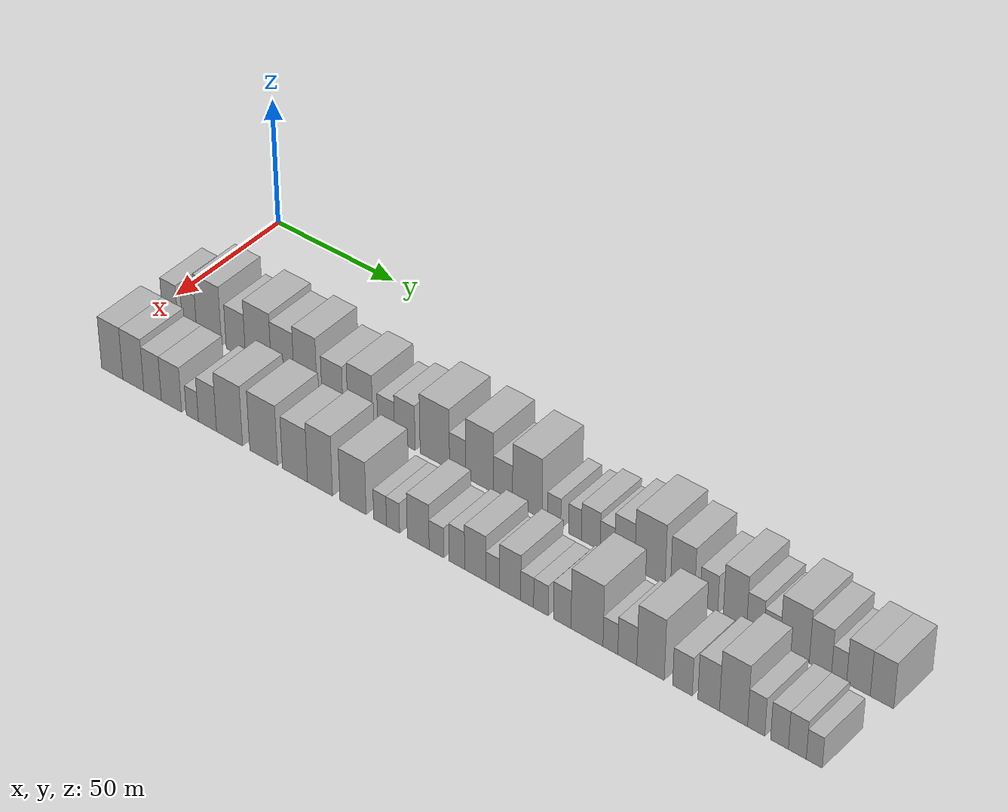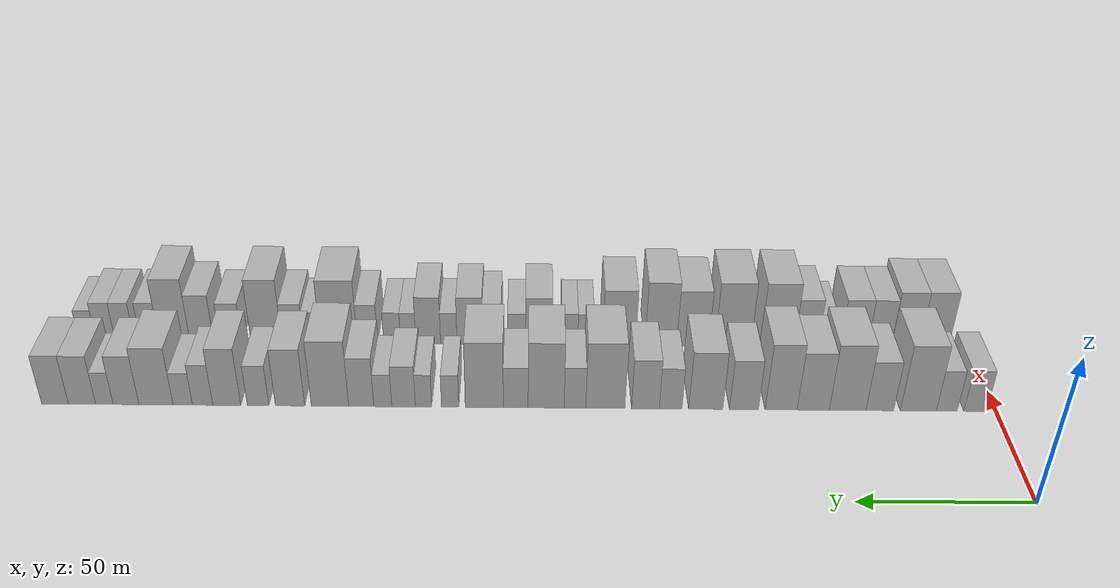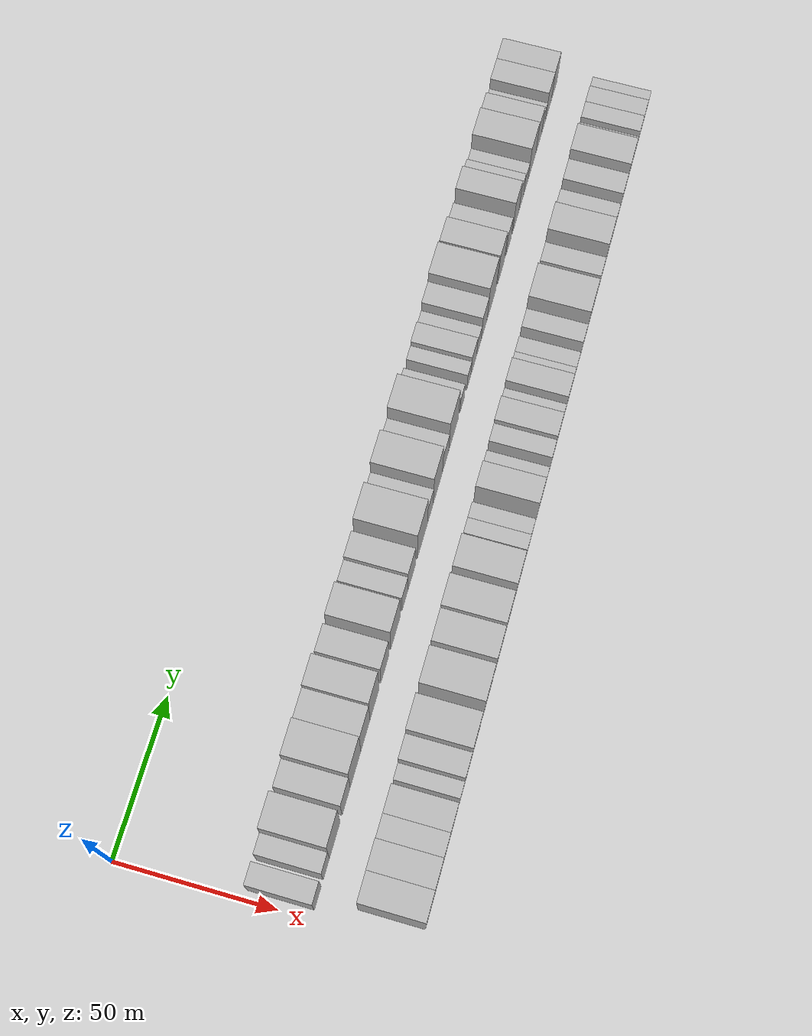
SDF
<sdf version="1.6">
 <world name="default">
  <model name="building_34">
   <static>1</static>
   <pose>50.0000 6.3638 0 0.000000 0.000000 0.000000</pose>
   <link name="link">
    <pose>0 0 7.50 0 0 0</pose>
    <collision name="collision"><geometry><box><size>20.0000 6.7982 15.0000</size></box></geometry></collision>
    <visual name="visual">
     <cast_shadows>0</cast_shadows>
     <geometry><box><size>20.0000 6.7982 15.0000</size></box></geometry>
     <material>
      <script>
       <uri>model://HANNAS_wall/materials/scripts</uri>
       <uri>model://HANNAS_wall/materials/textures</uri>
       <name>vrc/HANNAS_wall</name>
      </script>
     </material>
    </visual>
   </link>
  </model>
  <model name="building_35">
   <static>1</static>
   <pose>50.0000 14.8870 0 0.000000 0.000000 0.000000</pose>
   <link name="link">
    <pose>0 0 7.50 0 0 0</pose>
    <collision name="collision"><geometry><box><size>20.0000 6.2482 15.0000</size></box></geometry></collision>
    <visual name="visual">
     <cast_shadows>0</cast_shadows>
     <geometry><box><size>20.0000 6.2482 15.0000</size></box></geometry>
     <material>
      <script>
       <uri>model://HANNAS_wall/materials/scripts</uri>
       <uri>model://HANNAS_wall/materials/textures</uri>
       <name>vrc/HANNAS_wall</name>
      </script>
     </material>
    </visual>
   </link>
  </model>
  <model name="building_36">
   <static>1</static>
   <pose>50.0000 23.4039 0 0.000000 0.000000 0.000000</pose>
   <link name="link">
    <pose>0 0 12.00 0 0 0</pose>
    <collision name="collision"><geometry><box><size>20.0000 10.7855 24.0000</size></box></geometry></collision>
    <visual name="visual">
     <cast_shadows>0</cast_shadows>
     <geometry><box><size>20.0000 10.7855 24.0000</size></box></geometry>
     <material>
      <script>
       <uri>model://HANNAS_wall/materials/scripts</uri>
       <uri>model://HANNAS_wall/materials/textures</uri>
       <name>vrc/HANNAS_wall</name>
      </script>
     </material>
    </visual>
   </link>
  </model>
  <model name="building_37">
   <static>1</static>
   <pose>50.0000 34.9487 0 0.000000 0.000000 0.000000</pose>
   <link name="link">
    <pose>0 0 9.00 0 0 0</pose>
    <collision name="collision"><geometry><box><size>20.0000 8.3042 18.0000</size></box></geometry></collision>
    <visual name="visual">
     <cast_shadows>0</cast_shadows>
     <geometry><box><size>20.0000 8.3042 18.0000</size></box></geometry>
     <material>
      <script>
       <uri>model://HANNAS_wall/materials/scripts</uri>
       <uri>model://HANNAS_wall/materials/textures</uri>
       <name>vrc/HANNAS_wall</name>
      </script>
     </material>
    </visual>
   </link>
  </model>
  <model name="building_38">
   <static>1</static>
   <pose>50.0000 44.6083 0 0.000000 0.000000 0.000000</pose>
   <link name="link">
    <pose>0 0 12.00 0 0 0</pose>
    <collision name="collision"><geometry><box><size>20.0000 11.0150 24.0000</size></box></geometry></collision>
    <visual name="visual">
     <cast_shadows>0</cast_shadows>
     <geometry><box><size>20.0000 11.0150 24.0000</size></box></geometry>
     <material>
      <script>
       <uri>model://HANNAS_wall/materials/scripts</uri>
       <uri>model://HANNAS_wall/materials/textures</uri>
       <name>vrc/HANNAS_wall</name>
      </script>
     </material>
    </visual>
   </link>
  </model>
  <model name="building_39">
   <static>1</static>
   <pose>50.0000 54.9373 0 0.000000 0.000000 0.000000</pose>
   <link name="link">
    <pose>0 0 10.50 0 0 0</pose>
    <collision name="collision"><geometry><box><size>20.0000 9.6429 21.0000</size></box></geometry></collision>
    <visual name="visual">
     <cast_shadows>0</cast_shadows>
     <geometry><box><size>20.0000 9.6429 21.0000</size></box></geometry>
     <material>
      <script>
       <uri>model://HANNAS_wall/materials/scripts</uri>
       <uri>model://HANNAS_wall/materials/textures</uri>
       <name>vrc/HANNAS_wall</name>
      </script>
     </material>
    </visual>
   </link>
  </model>
  <model name="building_40">
   <static>1</static>
   <pose>50.0000 64.5607 0 0.000000 0.000000 0.000000</pose>
   <link name="link">
    <pose>0 0 12.00 0 0 0</pose>
    <collision name="collision"><geometry><box><size>20.0000 9.6038 24.0000</size></box></geometry></collision>
    <visual name="visual">
     <cast_shadows>0</cast_shadows>
     <geometry><box><size>20.0000 9.6038 24.0000</size></box></geometry>
     <material>
      <script>
       <uri>model://HANNAS_wall/materials/scripts</uri>
       <uri>model://HANNAS_wall/materials/textures</uri>
       <name>vrc/HANNAS_wall</name>
      </script>
     </material>
    </visual>
   </link>
  </model>
  <model name="building_41">
   <static>1</static>
   <pose>50.0000 75.7096 0 0.000000 0.000000 0.000000</pose>
   <link name="link">
    <pose>0 0 9.00 0 0 0</pose>
    <collision name="collision"><geometry><box><size>20.0000 8.6940 18.0000</size></box></geometry></collision>
    <visual name="visual">
     <cast_shadows>0</cast_shadows>
     <geometry><box><size>20.0000 8.6940 18.0000</size></box></geometry>
     <material>
      <script>
       <uri>model://HANNAS_wall/materials/scripts</uri>
       <uri>model://HANNAS_wall/materials/textures</uri>
       <name>vrc/HANNAS_wall</name>
      </script>
     </material>
    </visual>
   </link>
  </model>
  <model name="building_42">
   <static>1</static>
   <pose>50.0000 87.1924 0 0.000000 0.000000 0.000000</pose>
   <link name="link">
    <pose>0 0 10.50 0 0 0</pose>
    <collision name="collision"><geometry><box><size>20.0000 10.2716 21.0000</size></box></geometry></collision>
    <visual name="visual">
     <cast_shadows>0</cast_shadows>
     <geometry><box><size>20.0000 10.2716 21.0000</size></box></geometry>
     <material>
      <script>
       <uri>model://HANNAS_wall/materials/scripts</uri>
       <uri>model://HANNAS_wall/materials/textures</uri>
       <name>vrc/HANNAS_wall</name>
      </script>
     </material>
    </visual>
   </link>
  </model>
  <model name="building_43">
   <static>1</static>
   <pose>50.0000 97.7403 0 0.000000 0.000000 0.000000</pose>
   <link name="link">
    <pose>0 0 7.50 0 0 0</pose>
    <collision name="collision"><geometry><box><size>20.0000 6.8241 15.0000</size></box></geometry></collision>
    <visual name="visual">
     <cast_shadows>0</cast_shadows>
     <geometry><box><size>20.0000 6.8241 15.0000</size></box></geometry>
     <material>
      <script>
       <uri>model://HANNAS_wall/materials/scripts</uri>
       <uri>model://HANNAS_wall/materials/textures</uri>
       <name>vrc/HANNAS_wall</name>
      </script>
     </material>
    </visual>
   </link>
  </model>
  <model name="building_44">
   <static>1</static>
   <pose>50.0000 105.3268 0 0.000000 0.000000 0.000000</pose>
   <link name="link">
    <pose>0 0 9.00 0 0 0</pose>
    <collision name="collision"><geometry><box><size>20.0000 8.3489 18.0000</size></box></geometry></collision>
    <visual name="visual">
     <cast_shadows>0</cast_shadows>
     <geometry><box><size>20.0000 8.3489 18.0000</size></box></geometry>
     <material>
      <script>
       <uri>model://HANNAS_wall/materials/scripts</uri>
       <uri>model://HANNAS_wall/materials/textures</uri>
       <name>vrc/HANNAS_wall</name>
      </script>
     </material>
    </visual>
   </link>
  </model>
  <model name="building_45">
   <static>1</static>
   <pose>50.0000 117.3871 0 0.000000 0.000000 0.000000</pose>
   <link name="link">
    <pose>0 0 12.00 0 0 0</pose>
    <collision name="collision"><geometry><box><size>20.0000 11.7717 24.0000</size></box></geometry></collision>
    <visual name="visual">
     <cast_shadows>0</cast_shadows>
     <geometry><box><size>20.0000 11.7717 24.0000</size></box></geometry>
     <material>
      <script>
       <uri>model://HANNAS_wall/materials/scripts</uri>
       <uri>model://HANNAS_wall/materials/textures</uri>
       <name>vrc/HANNAS_wall</name>
      </script>
     </material>
    </visual>
   </link>
  </model>
  <model name="building_46">
   <static>1</static>
   <pose>50.0000 126.5301 0 0.000000 0.000000 0.000000</pose>
   <link name="link">
    <pose>0 0 7.50 0 0 0</pose>
    <collision name="collision"><geometry><box><size>20.0000 6.5144 15.0000</size></box></geometry></collision>
    <visual name="visual">
     <cast_shadows>0</cast_shadows>
     <geometry><box><size>20.0000 6.5144 15.0000</size></box></geometry>
     <material>
      <script>
       <uri>model://HANNAS_wall/materials/scripts</uri>
       <uri>model://HANNAS_wall/materials/textures</uri>
       <name>vrc/HANNAS_wall</name>
      </script>
     </material>
    </visual>
   </link>
  </model>
  <model name="building_47">
   <static>1</static>
   <pose>50.0000 135.2163 0 0.000000 0.000000 0.000000</pose>
   <link name="link">
    <pose>0 0 12.00 0 0 0</pose>
    <collision name="collision"><geometry><box><size>20.0000 10.8580 24.0000</size></box></geometry></collision>
    <visual name="visual">
     <cast_shadows>0</cast_shadows>
     <geometry><box><size>20.0000 10.8580 24.0000</size></box></geometry>
     <material>
      <script>
       <uri>model://HANNAS_wall/materials/scripts</uri>
       <uri>model://HANNAS_wall/materials/textures</uri>
       <name>vrc/HANNAS_wall</name>
      </script>
     </material>
    </visual>
   </link>
  </model>
  <model name="building_48">
   <static>1</static>
   <pose>50.0000 144.3716 0 0.000000 0.000000 0.000000</pose>
   <link name="link">
    <pose>0 0 7.50 0 0 0</pose>
    <collision name="collision"><geometry><box><size>20.0000 7.4525 15.0000</size></box></geometry></collision>
    <visual name="visual">
     <cast_shadows>0</cast_shadows>
     <geometry><box><size>20.0000 7.4525 15.0000</size></box></geometry>
     <material>
      <script>
       <uri>model://HANNAS_wall/materials/scripts</uri>
       <uri>model://HANNAS_wall/materials/textures</uri>
       <name>vrc/HANNAS_wall</name>
      </script>
     </material>
    </visual>
   </link>
  </model>
  <model name="building_49">
   <static>1</static>
   <pose>50.0000 153.8203 0 0.000000 0.000000 0.000000</pose>
   <link name="link">
    <pose>0 0 12.00 0 0 0</pose>
    <collision name="collision"><geometry><box><size>20.0000 11.4448 24.0000</size></box></geometry></collision>
    <visual name="visual">
     <cast_shadows>0</cast_shadows>
     <geometry><box><size>20.0000 11.4448 24.0000</size></box></geometry>
     <material>
      <script>
       <uri>model://HANNAS_wall/materials/scripts</uri>
       <uri>model://HANNAS_wall/materials/textures</uri>
       <name>vrc/HANNAS_wall</name>
      </script>
     </material>
    </visual>
   </link>
  </model>
  <model name="building_50">
   <static>1</static>
   <pose>50.0000 164.1333 0 0.000000 0.000000 0.000000</pose>
   <link name="link">
    <pose>0 0 6.00 0 0 0</pose>
    <collision name="collision"><geometry><box><size>20.0000 5.1812 12.0000</size></box></geometry></collision>
    <visual name="visual">
     <cast_shadows>0</cast_shadows>
     <geometry><box><size>20.0000 5.1812 12.0000</size></box></geometry>
     <material>
      <script>
       <uri>model://HANNAS_wall/materials/scripts</uri>
       <uri>model://HANNAS_wall/materials/textures</uri>
       <name>vrc/HANNAS_wall</name>
      </script>
     </material>
    </visual>
   </link>
  </model>
  <model name="building_51">
   <static>1</static>
   <pose>50.0000 172.1772 0 0.000000 0.000000 0.000000</pose>
   <link name="link">
    <pose>0 0 6.00 0 0 0</pose>
    <collision name="collision"><geometry><box><size>20.0000 4.9067 12.0000</size></box></geometry></collision>
    <visual name="visual">
     <cast_shadows>0</cast_shadows>
     <geometry><box><size>20.0000 4.9067 12.0000</size></box></geometry>
     <material>
      <script>
       <uri>model://HANNAS_wall/materials/scripts</uri>
       <uri>model://HANNAS_wall/materials/textures</uri>
       <name>vrc/HANNAS_wall</name>
      </script>
     </material>
    </visual>
   </link>
  </model>
  <model name="building_52">
   <static>1</static>
   <pose>50.0000 178.1916 0 0.000000 0.000000 0.000000</pose>
   <link name="link">
    <pose>0 0 7.50 0 0 0</pose>
    <collision name="collision"><geometry><box><size>20.0000 7.1221 15.0000</size></box></geometry></collision>
    <visual name="visual">
     <cast_shadows>0</cast_shadows>
     <geometry><box><size>20.0000 7.1221 15.0000</size></box></geometry>
     <material>
      <script>
       <uri>model://HANNAS_wall/materials/scripts</uri>
       <uri>model://HANNAS_wall/materials/textures</uri>
       <name>vrc/HANNAS_wall</name>
      </script>
     </material>
    </visual>
   </link>
  </model>
  <model name="building_53">
   <static>1</static>
   <pose>50.0000 184.4521 0 0.000000 0.000000 0.000000</pose>
   <link name="link">
    <pose>0 0 6.00 0 0 0</pose>
    <collision name="collision"><geometry><box><size>20.0000 5.3989 12.0000</size></box></geometry></collision>
    <visual name="visual">
     <cast_shadows>0</cast_shadows>
     <geometry><box><size>20.0000 5.3989 12.0000</size></box></geometry>
     <material>
      <script>
       <uri>model://HANNAS_wall/materials/scripts</uri>
       <uri>model://HANNAS_wall/materials/textures</uri>
       <name>vrc/HANNAS_wall</name>
      </script>
     </material>
    </visual>
   </link>
  </model>
  <model name="building_54">
   <static>1</static>
   <pose>50.0000 190.9490 0 0.000000 0.000000 0.000000</pose>
   <link name="link">
    <pose>0 0 9.00 0 0 0</pose>
    <collision name="collision"><geometry><box><size>20.0000 7.5949 18.0000</size></box></geometry></collision>
    <visual name="visual">
     <cast_shadows>0</cast_shadows>
     <geometry><box><size>20.0000 7.5949 18.0000</size></box></geometry>
     <material>
      <script>
       <uri>model://HANNAS_wall/materials/scripts</uri>
       <uri>model://HANNAS_wall/materials/textures</uri>
       <name>vrc/HANNAS_wall</name>
      </script>
     </material>
    </visual>
   </link>
  </model>
  <model name="building_55">
   <static>1</static>
   <pose>50.0000 200.3987 0 0.000000 0.000000 0.000000</pose>
   <link name="link">
    <pose>0 0 12.00 0 0 0</pose>
    <collision name="collision"><geometry><box><size>20.0000 11.3046 24.0000</size></box></geometry></collision>
    <visual name="visual">
     <cast_shadows>0</cast_shadows>
     <geometry><box><size>20.0000 11.3046 24.0000</size></box></geometry>
     <material>
      <script>
       <uri>model://HANNAS_wall/materials/scripts</uri>
       <uri>model://HANNAS_wall/materials/textures</uri>
       <name>vrc/HANNAS_wall</name>
      </script>
     </material>
    </visual>
   </link>
  </model>
  <model name="building_56">
   <static>1</static>
   <pose>50.0000 212.4728 0 0.000000 0.000000 0.000000</pose>
   <link name="link">
    <pose>0 0 10.50 0 0 0</pose>
    <collision name="collision"><geometry><box><size>20.0000 8.8435 21.0000</size></box></geometry></collision>
    <visual name="visual">
     <cast_shadows>0</cast_shadows>
     <geometry><box><size>20.0000 8.8435 21.0000</size></box></geometry>
     <material>
      <script>
       <uri>model://HANNAS_wall/materials/scripts</uri>
       <uri>model://HANNAS_wall/materials/textures</uri>
       <name>vrc/HANNAS_wall</name>
      </script>
     </material>
    </visual>
   </link>
  </model>
  <model name="building_57">
   <static>1</static>
   <pose>50.0000 222.1456 0 0.000000 0.000000 0.000000</pose>
   <link name="link">
    <pose>0 0 7.50 0 0 0</pose>
    <collision name="collision"><geometry><box><size>20.0000 6.5022 15.0000</size></box></geometry></collision>
    <visual name="visual">
     <cast_shadows>0</cast_shadows>
     <geometry><box><size>20.0000 6.5022 15.0000</size></box></geometry>
     <material>
      <script>
       <uri>model://HANNAS_wall/materials/scripts</uri>
       <uri>model://HANNAS_wall/materials/textures</uri>
       <name>vrc/HANNAS_wall</name>
      </script>
     </material>
    </visual>
   </link>
  </model>
  <model name="building_58">
   <static>1</static>
   <pose>50.0000 231.6266 0 0.000000 0.000000 0.000000</pose>
   <link name="link">
    <pose>0 0 10.50 0 0 0</pose>
    <collision name="collision"><geometry><box><size>20.0000 8.4597 21.0000</size></box></geometry></collision>
    <visual name="visual">
     <cast_shadows>0</cast_shadows>
     <geometry><box><size>20.0000 8.4597 21.0000</size></box></geometry>
     <material>
      <script>
       <uri>model://HANNAS_wall/materials/scripts</uri>
       <uri>model://HANNAS_wall/materials/textures</uri>
       <name>vrc/HANNAS_wall</name>
      </script>
     </material>
    </visual>
   </link>
  </model>
  <model name="building_59">
   <static>1</static>
   <pose>50.0000 238.9352 0 0.000000 0.000000 0.000000</pose>
   <link name="link">
    <pose>0 0 7.50 0 0 0</pose>
    <collision name="collision"><geometry><box><size>20.0000 6.1574 15.0000</size></box></geometry></collision>
    <visual name="visual">
     <cast_shadows>0</cast_shadows>
     <geometry><box><size>20.0000 6.1574 15.0000</size></box></geometry>
     <material>
      <script>
       <uri>model://HANNAS_wall/materials/scripts</uri>
       <uri>model://HANNAS_wall/materials/textures</uri>
       <name>vrc/HANNAS_wall</name>
      </script>
     </material>
    </visual>
   </link>
  </model>
  <model name="building_60">
   <static>1</static>
   <pose>50.0000 244.9371 0 0.000000 0.000000 0.000000</pose>
   <link name="link">
    <pose>0 0 6.00 0 0 0</pose>
    <collision name="collision"><geometry><box><size>20.0000 5.8464 12.0000</size></box></geometry></collision>
    <visual name="visual">
     <cast_shadows>0</cast_shadows>
     <geometry><box><size>20.0000 5.8464 12.0000</size></box></geometry>
     <material>
      <script>
       <uri>model://HANNAS_wall/materials/scripts</uri>
       <uri>model://HANNAS_wall/materials/textures</uri>
       <name>vrc/HANNAS_wall</name>
      </script>
     </material>
    </visual>
   </link>
  </model>
  <model name="building_61">
   <static>1</static>
   <pose>50.0000 253.0524 0 0.000000 0.000000 0.000000</pose>
   <link name="link">
    <pose>0 0 10.50 0 0 0</pose>
    <collision name="collision"><geometry><box><size>20.0000 10.3841 21.0000</size></box></geometry></collision>
    <visual name="visual">
     <cast_shadows>0</cast_shadows>
     <geometry><box><size>20.0000 10.3841 21.0000</size></box></geometry>
     <material>
      <script>
       <uri>model://HANNAS_wall/materials/scripts</uri>
       <uri>model://HANNAS_wall/materials/textures</uri>
       <name>vrc/HANNAS_wall</name>
      </script>
     </material>
    </visual>
   </link>
  </model>
  <model name="building_62">
   <static>1</static>
   <pose>50.0000 262.1582 0 0.000000 0.000000 0.000000</pose>
   <link name="link">
    <pose>0 0 9.00 0 0 0</pose>
    <collision name="collision"><geometry><box><size>20.0000 7.8275 18.0000</size></box></geometry></collision>
    <visual name="visual">
     <cast_shadows>0</cast_shadows>
     <geometry><box><size>20.0000 7.8275 18.0000</size></box></geometry>
     <material>
      <script>
       <uri>model://HANNAS_wall/materials/scripts</uri>
       <uri>model://HANNAS_wall/materials/textures</uri>
       <name>vrc/HANNAS_wall</name>
      </script>
     </material>
    </visual>
   </link>
  </model>
  <model name="building_63">
   <static>1</static>
   <pose>50.0000 268.7142 0 0.000000 0.000000 0.000000</pose>
   <link name="link">
    <pose>0 0 6.00 0 0 0</pose>
    <collision name="collision"><geometry><box><size>20.0000 5.2844 12.0000</size></box></geometry></collision>
    <visual name="visual">
     <cast_shadows>0</cast_shadows>
     <geometry><box><size>20.0000 5.2844 12.0000</size></box></geometry>
     <material>
      <script>
       <uri>model://HANNAS_wall/materials/scripts</uri>
       <uri>model://HANNAS_wall/materials/textures</uri>
       <name>vrc/HANNAS_wall</name>
      </script>
     </material>
    </visual>
   </link>
  </model>
  <model name="building_64">
   <static>1</static>
   <pose>50.0000 275.4763 0 0.000000 0.000000 0.000000</pose>
   <link name="link">
    <pose>0 0 9.00 0 0 0</pose>
    <collision name="collision"><geometry><box><size>20.0000 8.2398 18.0000</size></box></geometry></collision>
    <visual name="visual">
     <cast_shadows>0</cast_shadows>
     <geometry><box><size>20.0000 8.2398 18.0000</size></box></geometry>
     <material>
      <script>
       <uri>model://HANNAS_wall/materials/scripts</uri>
       <uri>model://HANNAS_wall/materials/textures</uri>
       <name>vrc/HANNAS_wall</name>
      </script>
     </material>
    </visual>
   </link>
  </model>
  <model name="building_65">
   <static>1</static>
   <pose>50.0000 283.6614 0 0.000000 0.000000 0.000000</pose>
   <link name="link">
    <pose>0 0 9.00 0 0 0</pose>
    <collision name="collision"><geometry><box><size>20.0000 8.1304 18.0000</size></box></geometry></collision>
    <visual name="visual">
     <cast_shadows>0</cast_shadows>
     <geometry><box><size>20.0000 8.1304 18.0000</size></box></geometry>
     <material>
      <script>
       <uri>model://HANNAS_wall/materials/scripts</uri>
       <uri>model://HANNAS_wall/materials/textures</uri>
       <name>vrc/HANNAS_wall</name>
      </script>
     </material>
    </visual>
   </link>
  </model>
  <model name="building_98">
   <static>1</static>
   <pose>82.0000 11.1010 0 0.000000 0.000000 0.000000</pose>
   <link name="link">
    <pose>0 0 10.50 0 0 0</pose>
    <collision name="collision"><geometry><box><size>20.0000 9.2397 21.0000</size></box></geometry></collision>
    <visual name="visual">
     <cast_shadows>0</cast_shadows>
     <geometry><box><size>20.0000 9.2397 21.0000</size></box></geometry>
     <material>
      <script>
       <uri>model://HANNAS_wall/materials/scripts</uri>
       <uri>model://HANNAS_wall/materials/textures</uri>
       <name>vrc/HANNAS_wall</name>
      </script>
     </material>
    </visual>
   </link>
  </model>
  <model name="building_99">
   <static>1</static>
   <pose>82.0000 20.2631 0 0.000000 0.000000 0.000000</pose>
   <link name="link">
    <pose>0 0 10.50 0 0 0</pose>
    <collision name="collision"><geometry><box><size>20.0000 9.0844 21.0000</size></box></geometry></collision>
    <visual name="visual">
     <cast_shadows>0</cast_shadows>
     <geometry><box><size>20.0000 9.0844 21.0000</size></box></geometry>
     <material>
      <script>
       <uri>model://HANNAS_wall/materials/scripts</uri>
       <uri>model://HANNAS_wall/materials/textures</uri>
       <name>vrc/HANNAS_wall</name>
      </script>
     </material>
    </visual>
   </link>
  </model>
  <model name="building_100">
   <static>1</static>
   <pose>82.0000 28.5610 0 0.000000 0.000000 0.000000</pose>
   <link name="link">
    <pose>0 0 9.00 0 0 0</pose>
    <collision name="collision"><geometry><box><size>20.0000 7.5115 18.0000</size></box></geometry></collision>
    <visual name="visual">
     <cast_shadows>0</cast_shadows>
     <geometry><box><size>20.0000 7.5115 18.0000</size></box></geometry>
     <material>
      <script>
       <uri>model://HANNAS_wall/materials/scripts</uri>
       <uri>model://HANNAS_wall/materials/textures</uri>
       <name>vrc/HANNAS_wall</name>
      </script>
     </material>
    </visual>
   </link>
  </model>
  <model name="building_101">
   <static>1</static>
   <pose>82.0000 36.6432 0 0.000000 0.000000 0.000000</pose>
   <link name="link">
    <pose>0 0 9.00 0 0 0</pose>
    <collision name="collision"><geometry><box><size>20.0000 8.6530 18.0000</size></box></geometry></collision>
    <visual name="visual">
     <cast_shadows>0</cast_shadows>
     <geometry><box><size>20.0000 8.6530 18.0000</size></box></geometry>
     <material>
      <script>
       <uri>model://HANNAS_wall/materials/scripts</uri>
       <uri>model://HANNAS_wall/materials/textures</uri>
       <name>vrc/HANNAS_wall</name>
      </script>
     </material>
    </visual>
   </link>
  </model>
  <model name="building_102">
   <static>1</static>
   <pose>82.0000 45.5241 0 0.000000 0.000000 0.000000</pose>
   <link name="link">
    <pose>0 0 6.00 0 0 0</pose>
    <collision name="collision"><geometry><box><size>20.0000 5.1088 12.0000</size></box></geometry></collision>
    <visual name="visual">
     <cast_shadows>0</cast_shadows>
     <geometry><box><size>20.0000 5.1088 12.0000</size></box></geometry>
     <material>
      <script>
       <uri>model://HANNAS_wall/materials/scripts</uri>
       <uri>model://HANNAS_wall/materials/textures</uri>
       <name>vrc/HANNAS_wall</name>
      </script>
     </material>
    </visual>
   </link>
  </model>
  <model name="building_103">
   <static>1</static>
   <pose>82.0000 51.8944 0 0.000000 0.000000 0.000000</pose>
   <link name="link">
    <pose>0 0 9.00 0 0 0</pose>
    <collision name="collision"><geometry><box><size>20.0000 7.6317 18.0000</size></box></geometry></collision>
    <visual name="visual">
     <cast_shadows>0</cast_shadows>
     <geometry><box><size>20.0000 7.6317 18.0000</size></box></geometry>
     <material>
      <script>
       <uri>model://HANNAS_wall/materials/scripts</uri>
       <uri>model://HANNAS_wall/materials/textures</uri>
       <name>vrc/HANNAS_wall</name>
      </script>
     </material>
    </visual>
   </link>
  </model>
  <model name="building_104">
   <static>1</static>
   <pose>82.0000 61.1485 0 0.000000 0.000000 0.000000</pose>
   <link name="link">
    <pose>0 0 12.00 0 0 0</pose>
    <collision name="collision"><geometry><box><size>20.0000 10.8766 24.0000</size></box></geometry></collision>
    <visual name="visual">
     <cast_shadows>0</cast_shadows>
     <geometry><box><size>20.0000 10.8766 24.0000</size></box></geometry>
     <material>
      <script>
       <uri>model://HANNAS_wall/materials/scripts</uri>
       <uri>model://HANNAS_wall/materials/textures</uri>
       <name>vrc/HANNAS_wall</name>
      </script>
     </material>
    </visual>
   </link>
  </model>
  <model name="building_105">
   <static>1</static>
   <pose>82.0000 75.3329 0 0.000000 0.000000 0.000000</pose>
   <link name="link">
    <pose>0 0 12.00 0 0 0</pose>
    <collision name="collision"><geometry><box><size>20.0000 11.4922 24.0000</size></box></geometry></collision>
    <visual name="visual">
     <cast_shadows>0</cast_shadows>
     <geometry><box><size>20.0000 11.4922 24.0000</size></box></geometry>
     <material>
      <script>
       <uri>model://HANNAS_wall/materials/scripts</uri>
       <uri>model://HANNAS_wall/materials/textures</uri>
       <name>vrc/HANNAS_wall</name>
      </script>
     </material>
    </visual>
   </link>
  </model>
  <model name="building_106">
   <static>1</static>
   <pose>82.0000 88.1980 0 0.000000 0.000000 0.000000</pose>
   <link name="link">
    <pose>0 0 10.50 0 0 0</pose>
    <collision name="collision"><geometry><box><size>20.0000 10.2379 21.0000</size></box></geometry></collision>
    <visual name="visual">
     <cast_shadows>0</cast_shadows>
     <geometry><box><size>20.0000 10.2379 21.0000</size></box></geometry>
     <material>
      <script>
       <uri>model://HANNAS_wall/materials/scripts</uri>
       <uri>model://HANNAS_wall/materials/textures</uri>
       <name>vrc/HANNAS_wall</name>
      </script>
     </material>
    </visual>
   </link>
  </model>
  <model name="building_107">
   <static>1</static>
   <pose>82.0000 98.3725 0 0.000000 0.000000 0.000000</pose>
   <link name="link">
    <pose>0 0 12.00 0 0 0</pose>
    <collision name="collision"><geometry><box><size>20.0000 10.1111 24.0000</size></box></geometry></collision>
    <visual name="visual">
     <cast_shadows>0</cast_shadows>
     <geometry><box><size>20.0000 10.1111 24.0000</size></box></geometry>
     <material>
      <script>
       <uri>model://HANNAS_wall/materials/scripts</uri>
       <uri>model://HANNAS_wall/materials/textures</uri>
       <name>vrc/HANNAS_wall</name>
      </script>
     </material>
    </visual>
   </link>
  </model>
  <model name="building_108">
   <static>1</static>
   <pose>82.0000 111.6665 0 0.000000 0.000000 0.000000</pose>
   <link name="link">
    <pose>0 0 10.50 0 0 0</pose>
    <collision name="collision"><geometry><box><size>20.0000 10.4770 21.0000</size></box></geometry></collision>
    <visual name="visual">
     <cast_shadows>0</cast_shadows>
     <geometry><box><size>20.0000 10.4770 21.0000</size></box></geometry>
     <material>
      <script>
       <uri>model://HANNAS_wall/materials/scripts</uri>
       <uri>model://HANNAS_wall/materials/textures</uri>
       <name>vrc/HANNAS_wall</name>
      </script>
     </material>
    </visual>
   </link>
  </model>
  <model name="building_109">
   <static>1</static>
   <pose>82.0000 122.4484 0 0.000000 0.000000 0.000000</pose>
   <link name="link">
    <pose>0 0 6.00 0 0 0</pose>
    <collision name="collision"><geometry><box><size>20.0000 5.0867 12.0000</size></box></geometry></collision>
    <visual name="visual">
     <cast_shadows>0</cast_shadows>
     <geometry><box><size>20.0000 5.0867 12.0000</size></box></geometry>
     <material>
      <script>
       <uri>model://HANNAS_wall/materials/scripts</uri>
       <uri>model://HANNAS_wall/materials/textures</uri>
       <name>vrc/HANNAS_wall</name>
      </script>
     </material>
    </visual>
   </link>
  </model>
  <model name="building_110">
   <static>1</static>
   <pose>82.0000 127.5790 0 0.000000 0.000000 0.000000</pose>
   <link name="link">
    <pose>0 0 6.00 0 0 0</pose>
    <collision name="collision"><geometry><box><size>20.0000 5.1746 12.0000</size></box></geometry></collision>
    <visual name="visual">
     <cast_shadows>0</cast_shadows>
     <geometry><box><size>20.0000 5.1746 12.0000</size></box></geometry>
     <material>
      <script>
       <uri>model://HANNAS_wall/materials/scripts</uri>
       <uri>model://HANNAS_wall/materials/textures</uri>
       <name>vrc/HANNAS_wall</name>
      </script>
     </material>
    </visual>
   </link>
  </model>
  <model name="building_111">
   <static>1</static>
   <pose>82.0000 137.4413 0 0.000000 0.000000 0.000000</pose>
   <link name="link">
    <pose>0 0 9.00 0 0 0</pose>
    <collision name="collision"><geometry><box><size>20.0000 8.5499 18.0000</size></box></geometry></collision>
    <visual name="visual">
     <cast_shadows>0</cast_shadows>
     <geometry><box><size>20.0000 8.5499 18.0000</size></box></geometry>
     <material>
      <script>
       <uri>model://HANNAS_wall/materials/scripts</uri>
       <uri>model://HANNAS_wall/materials/textures</uri>
       <name>vrc/HANNAS_wall</name>
      </script>
     </material>
    </visual>
   </link>
  </model>
  <model name="building_112">
   <static>1</static>
   <pose>82.0000 144.5726 0 0.000000 0.000000 0.000000</pose>
   <link name="link">
    <pose>0 0 6.00 0 0 0</pose>
    <collision name="collision"><geometry><box><size>20.0000 5.7128 12.0000</size></box></geometry></collision>
    <visual name="visual">
     <cast_shadows>0</cast_shadows>
     <geometry><box><size>20.0000 5.7128 12.0000</size></box></geometry>
     <material>
      <script>
       <uri>model://HANNAS_wall/materials/scripts</uri>
       <uri>model://HANNAS_wall/materials/textures</uri>
       <name>vrc/HANNAS_wall</name>
      </script>
     </material>
    </visual>
   </link>
  </model>
  <model name="building_113">
   <static>1</static>
   <pose>82.0000 152.4551 0 0.000000 0.000000 0.000000</pose>
   <link name="link">
    <pose>0 0 7.50 0 0 0</pose>
    <collision name="collision"><geometry><box><size>20.0000 6.0523 15.0000</size></box></geometry></collision>
    <visual name="visual">
     <cast_shadows>0</cast_shadows>
     <geometry><box><size>20.0000 6.0523 15.0000</size></box></geometry>
     <material>
      <script>
       <uri>model://HANNAS_wall/materials/scripts</uri>
       <uri>model://HANNAS_wall/materials/textures</uri>
       <name>vrc/HANNAS_wall</name>
      </script>
     </material>
    </visual>
   </link>
  </model>
  <model name="building_114">
   <static>1</static>
   <pose>82.0000 159.5569 0 0.000000 0.000000 0.000000</pose>
   <link name="link">
    <pose>0 0 9.00 0 0 0</pose>
    <collision name="collision"><geometry><box><size>20.0000 8.1512 18.0000</size></box></geometry></collision>
    <visual name="visual">
     <cast_shadows>0</cast_shadows>
     <geometry><box><size>20.0000 8.1512 18.0000</size></box></geometry>
     <material>
      <script>
       <uri>model://HANNAS_wall/materials/scripts</uri>
       <uri>model://HANNAS_wall/materials/textures</uri>
       <name>vrc/HANNAS_wall</name>
      </script>
     </material>
    </visual>
   </link>
  </model>
  <model name="building_115">
   <static>1</static>
   <pose>82.0000 166.2718 0 0.000000 0.000000 0.000000</pose>
   <link name="link">
    <pose>0 0 6.00 0 0 0</pose>
    <collision name="collision"><geometry><box><size>20.0000 5.2786 12.0000</size></box></geometry></collision>
    <visual name="visual">
     <cast_shadows>0</cast_shadows>
     <geometry><box><size>20.0000 5.2786 12.0000</size></box></geometry>
     <material>
      <script>
       <uri>model://HANNAS_wall/materials/scripts</uri>
       <uri>model://HANNAS_wall/materials/textures</uri>
       <name>vrc/HANNAS_wall</name>
      </script>
     </material>
    </visual>
   </link>
  </model>
  <model name="building_116">
   <static>1</static>
   <pose>82.0000 172.8954 0 0.000000 0.000000 0.000000</pose>
   <link name="link">
    <pose>0 0 9.00 0 0 0</pose>
    <collision name="collision"><geometry><box><size>20.0000 7.9686 18.0000</size></box></geometry></collision>
    <visual name="visual">
     <cast_shadows>0</cast_shadows>
     <geometry><box><size>20.0000 7.9686 18.0000</size></box></geometry>
     <material>
      <script>
       <uri>model://HANNAS_wall/materials/scripts</uri>
       <uri>model://HANNAS_wall/materials/textures</uri>
       <name>vrc/HANNAS_wall</name>
      </script>
     </material>
    </visual>
   </link>
  </model>
  <model name="building_117">
   <static>1</static>
   <pose>82.0000 179.3074 0 0.000000 0.000000 0.000000</pose>
   <link name="link">
    <pose>0 0 6.00 0 0 0</pose>
    <collision name="collision"><geometry><box><size>20.0000 4.8554 12.0000</size></box></geometry></collision>
    <visual name="visual">
     <cast_shadows>0</cast_shadows>
     <geometry><box><size>20.0000 4.8554 12.0000</size></box></geometry>
     <material>
      <script>
       <uri>model://HANNAS_wall/materials/scripts</uri>
       <uri>model://HANNAS_wall/materials/textures</uri>
       <name>vrc/HANNAS_wall</name>
      </script>
     </material>
    </visual>
   </link>
  </model>
  <model name="building_118">
   <static>1</static>
   <pose>82.0000 184.4457 0 0.000000 0.000000 0.000000</pose>
   <link name="link">
    <pose>0 0 6.00 0 0 0</pose>
    <collision name="collision"><geometry><box><size>20.0000 5.4211 12.0000</size></box></geometry></collision>
    <visual name="visual">
     <cast_shadows>0</cast_shadows>
     <geometry><box><size>20.0000 5.4211 12.0000</size></box></geometry>
     <material>
      <script>
       <uri>model://HANNAS_wall/materials/scripts</uri>
       <uri>model://HANNAS_wall/materials/textures</uri>
       <name>vrc/HANNAS_wall</name>
      </script>
     </material>
    </visual>
   </link>
  </model>
  <model name="building_119">
   <static>1</static>
   <pose>82.0000 192.4128 0 0.000000 0.000000 0.000000</pose>
   <link name="link">
    <pose>0 0 7.50 0 0 0</pose>
    <collision name="collision"><geometry><box><size>20.0000 6.5133 15.0000</size></box></geometry></collision>
    <visual name="visual">
     <cast_shadows>0</cast_shadows>
     <geometry><box><size>20.0000 6.5133 15.0000</size></box></geometry>
     <material>
      <script>
       <uri>model://HANNAS_wall/materials/scripts</uri>
       <uri>model://HANNAS_wall/materials/textures</uri>
       <name>vrc/HANNAS_wall</name>
      </script>
     </material>
    </visual>
   </link>
  </model>
  <model name="building_120">
   <static>1</static>
   <pose>82.0000 201.5897 0 0.000000 0.000000 0.000000</pose>
   <link name="link">
    <pose>0 0 12.00 0 0 0</pose>
    <collision name="collision"><geometry><box><size>20.0000 11.8405 24.0000</size></box></geometry></collision>
    <visual name="visual">
     <cast_shadows>0</cast_shadows>
     <geometry><box><size>20.0000 11.8405 24.0000</size></box></geometry>
     <material>
      <script>
       <uri>model://HANNAS_wall/materials/scripts</uri>
       <uri>model://HANNAS_wall/materials/textures</uri>
       <name>vrc/HANNAS_wall</name>
      </script>
     </material>
    </visual>
   </link>
  </model>
  <model name="building_121">
   <static>1</static>
   <pose>82.0000 210.2259 0 0.000000 0.000000 0.000000</pose>
   <link name="link">
    <pose>0 0 6.00 0 0 0</pose>
    <collision name="collision"><geometry><box><size>20.0000 5.4319 12.0000</size></box></geometry></collision>
    <visual name="visual">
     <cast_shadows>0</cast_shadows>
     <geometry><box><size>20.0000 5.4319 12.0000</size></box></geometry>
     <material>
      <script>
       <uri>model://HANNAS_wall/materials/scripts</uri>
       <uri>model://HANNAS_wall/materials/textures</uri>
       <name>vrc/HANNAS_wall</name>
      </script>
     </material>
    </visual>
   </link>
  </model>
  <model name="building_122">
   <static>1</static>
   <pose>82.0000 216.4102 0 0.000000 0.000000 0.000000</pose>
   <link name="link">
    <pose>0 0 7.50 0 0 0</pose>
    <collision name="collision"><geometry><box><size>20.0000 6.9368 15.0000</size></box></geometry></collision>
    <visual name="visual">
     <cast_shadows>0</cast_shadows>
     <geometry><box><size>20.0000 6.9368 15.0000</size></box></geometry>
     <material>
      <script>
       <uri>model://HANNAS_wall/materials/scripts</uri>
       <uri>model://HANNAS_wall/materials/textures</uri>
       <name>vrc/HANNAS_wall</name>
      </script>
     </material>
    </visual>
   </link>
  </model>
  <model name="building_123">
   <static>1</static>
   <pose>82.0000 224.8403 0 0.000000 0.000000 0.000000</pose>
   <link name="link">
    <pose>0 0 12.00 0 0 0</pose>
    <collision name="collision"><geometry><box><size>20.0000 9.9234 24.0000</size></box></geometry></collision>
    <visual name="visual">
     <cast_shadows>0</cast_shadows>
     <geometry><box><size>20.0000 9.9234 24.0000</size></box></geometry>
     <material>
      <script>
       <uri>model://HANNAS_wall/materials/scripts</uri>
       <uri>model://HANNAS_wall/materials/textures</uri>
       <name>vrc/HANNAS_wall</name>
      </script>
     </material>
    </visual>
   </link>
  </model>
  <model name="building_124">
   <static>1</static>
   <pose>82.0000 236.3162 0 0.000000 0.000000 0.000000</pose>
   <link name="link">
    <pose>0 0 7.50 0 0 0</pose>
    <collision name="collision"><geometry><box><size>20.0000 7.0283 15.0000</size></box></geometry></collision>
    <visual name="visual">
     <cast_shadows>0</cast_shadows>
     <geometry><box><size>20.0000 7.0283 15.0000</size></box></geometry>
     <material>
      <script>
       <uri>model://HANNAS_wall/materials/scripts</uri>
       <uri>model://HANNAS_wall/materials/textures</uri>
       <name>vrc/HANNAS_wall</name>
      </script>
     </material>
    </visual>
   </link>
  </model>
  <model name="building_125">
   <static>1</static>
   <pose>82.0000 245.6657 0 0.000000 0.000000 0.000000</pose>
   <link name="link">
    <pose>0 0 9.00 0 0 0</pose>
    <collision name="collision"><geometry><box><size>20.0000 7.6706 18.0000</size></box></geometry></collision>
    <visual name="visual">
     <cast_shadows>0</cast_shadows>
     <geometry><box><size>20.0000 7.6706 18.0000</size></box></geometry>
     <material>
      <script>
       <uri>model://HANNAS_wall/materials/scripts</uri>
       <uri>model://HANNAS_wall/materials/textures</uri>
       <name>vrc/HANNAS_wall</name>
      </script>
     </material>
    </visual>
   </link>
  </model>
  <model name="building_126">
   <static>1</static>
   <pose>82.0000 254.4486 0 0.000000 0.000000 0.000000</pose>
   <link name="link">
    <pose>0 0 12.00 0 0 0</pose>
    <collision name="collision"><geometry><box><size>20.0000 9.8952 24.0000</size></box></geometry></collision>
    <visual name="visual">
     <cast_shadows>0</cast_shadows>
     <geometry><box><size>20.0000 9.8952 24.0000</size></box></geometry>
     <material>
      <script>
       <uri>model://HANNAS_wall/materials/scripts</uri>
       <uri>model://HANNAS_wall/materials/textures</uri>
       <name>vrc/HANNAS_wall</name>
      </script>
     </material>
    </visual>
   </link>
  </model>
  <model name="building_127">
   <static>1</static>
   <pose>82.0000 262.4117 0 0.000000 0.000000 0.000000</pose>
   <link name="link">
    <pose>0 0 7.50 0 0 0</pose>
    <collision name="collision"><geometry><box><size>20.0000 6.0311 15.0000</size></box></geometry></collision>
    <visual name="visual">
     <cast_shadows>0</cast_shadows>
     <geometry><box><size>20.0000 6.0311 15.0000</size></box></geometry>
     <material>
      <script>
       <uri>model://HANNAS_wall/materials/scripts</uri>
       <uri>model://HANNAS_wall/materials/textures</uri>
       <name>vrc/HANNAS_wall</name>
      </script>
     </material>
    </visual>
   </link>
  </model>
  <model name="building_128">
   <static>1</static>
   <pose>82.0000 270.5123 0 0.000000 0.000000 0.000000</pose>
   <link name="link">
    <pose>0 0 7.50 0 0 0</pose>
    <collision name="collision"><geometry><box><size>20.0000 6.1700 15.0000</size></box></geometry></collision>
    <visual name="visual">
     <cast_shadows>0</cast_shadows>
     <geometry><box><size>20.0000 6.1700 15.0000</size></box></geometry>
     <material>
      <script>
       <uri>model://HANNAS_wall/materials/scripts</uri>
       <uri>model://HANNAS_wall/materials/textures</uri>
       <name>vrc/HANNAS_wall</name>
      </script>
     </material>
    </visual>
   </link>
  </model>
  <model name="building_129">
   <static>1</static>
   <pose>82.0000 276.6897 0 0.000000 0.000000 0.000000</pose>
   <link name="link">
    <pose>0 0 7.50 0 0 0</pose>
    <collision name="collision"><geometry><box><size>20.0000 6.1849 15.0000</size></box></geometry></collision>
    <visual name="visual">
     <cast_shadows>0</cast_shadows>
     <geometry><box><size>20.0000 6.1849 15.0000</size></box></geometry>
     <material>
      <script>
       <uri>model://HANNAS_wall/materials/scripts</uri>
       <uri>model://HANNAS_wall/materials/textures</uri>
       <name>vrc/HANNAS_wall</name>
      </script>
     </material>
    </visual>
   </link>
  </model>
  <model name="building_130">
   <static>1</static>
   <pose>82.0000 282.5218 0 0.000000 0.000000 0.000000</pose>
   <link name="link">
    <pose>0 0 6.00 0 0 0</pose>
    <collision name="collision"><geometry><box><size>20.0000 5.4792 12.0000</size></box></geometry></collision>
    <visual name="visual">
     <cast_shadows>0</cast_shadows>
     <geometry><box><size>20.0000 5.4792 12.0000</size></box></geometry>
     <material>
      <script>
       <uri>model://HANNAS_wall/materials/scripts</uri>
       <uri>model://HANNAS_wall/materials/textures</uri>
       <name>vrc/HANNAS_wall</name>
      </script>
     </material>
    </visual>
   </link>
  </model>
 </world>
</sdf>
